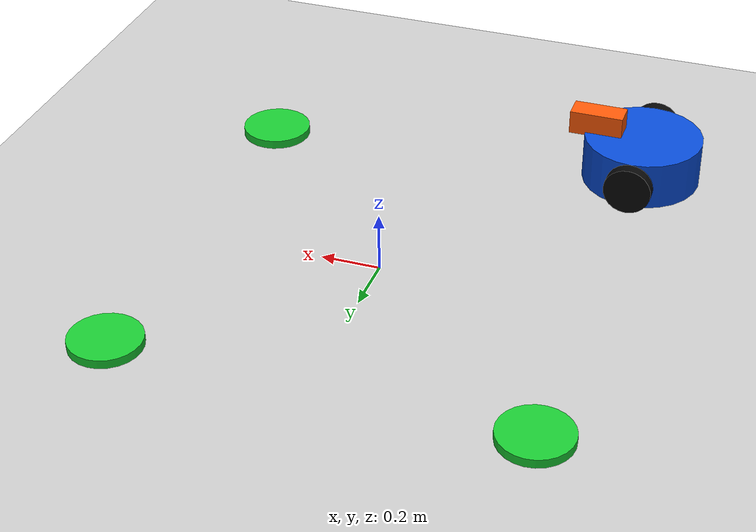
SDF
<?xml version="1.0"?>
<sdf version="1.6">
  <world name="policy_demo">
    <plugin name="gazebo_ros_state" filename="libgazebo_ros_state.so">
      <ros><namespace>/</namespace></ros>
      <update_rate>20.0</update_rate>
    </plugin>
    <gravity>0 0 -9.8</gravity>
    <physics type="ode"><real_time_update_rate>100</real_time_update_rate><max_step_size>0.01</max_step_size></physics>
    <include><uri>model://sun</uri></include>
    <include><uri>model://ground_plane</uri></include>

    <model name="robot">
      <pose>-0.7 -0.7 0.16 0 0 0</pose>
      <link name="base_link">
        <inertial><mass>2.0</mass><inertia><ixx>0.03</ixx><iyy>0.03</iyy><izz>0.05</izz></inertia></inertial>
        <collision name="body_collision"><geometry><cylinder><radius>0.20</radius><length>0.16</length></cylinder></geometry></collision>
        <visual name="body_visual"><geometry><cylinder><radius>0.20</radius><length>0.16</length></cylinder></geometry><material><ambient>0.03 0.30 0.85 1</ambient><diffuse>0.03 0.30 0.85 1</diffuse></material></visual>
        <visual name="direction"><pose>0.16 0 0.11 0 0 0</pose><geometry><box><size>0.18 0.08 0.08</size></box></geometry><material><ambient>1 0.35 0.03 1</ambient><diffuse>1 0.35 0.03 1</diffuse></material></visual>
      </link>
      <link name="left_wheel"><pose>0 0.22 0 1.5708 0 0</pose><inertial><mass>0.15</mass><inertia><ixx>0.001</ixx><iyy>0.001</iyy><izz>0.001</izz></inertia></inertial><collision name="c"><geometry><cylinder><radius>0.08</radius><length>0.04</length></cylinder></geometry></collision><visual name="v"><geometry><cylinder><radius>0.08</radius><length>0.04</length></cylinder></geometry><material><ambient>0.03 0.03 0.03 1</ambient></material></visual></link>
      <link name="right_wheel"><pose>0 -0.22 0 1.5708 0 0</pose><inertial><mass>0.15</mass><inertia><ixx>0.001</ixx><iyy>0.001</iyy><izz>0.001</izz></inertia></inertial><collision name="c"><geometry><cylinder><radius>0.08</radius><length>0.04</length></cylinder></geometry></collision><visual name="v"><geometry><cylinder><radius>0.08</radius><length>0.04</length></cylinder></geometry><material><ambient>0.03 0.03 0.03 1</ambient></material></visual></link>
      <joint name="left_joint" type="revolute"><parent>base_link</parent><child>left_wheel</child><axis><xyz>0 1 0</xyz></axis></joint>
      <joint name="right_joint" type="revolute"><parent>base_link</parent><child>right_wheel</child><axis><xyz>0 1 0</xyz></axis></joint>
      <plugin name="diff_drive" filename="libgazebo_ros_diff_drive.so">
        <ros><namespace>/</namespace></ros><update_rate>50</update_rate><left_joint>left_joint</left_joint><right_joint>right_joint</right_joint><wheel_separation>0.44</wheel_separation><wheel_diameter>0.16</wheel_diameter><max_wheel_torque>10</max_wheel_torque><command_topic>cmd_vel</command_topic><odometry_topic>odom</odometry_topic><odometry_frame>odom</odometry_frame><robot_base_frame>base_link</robot_base_frame><publish_odom>true</publish_odom>
      </plugin>
    </model>

    <model name="camera_rig">
      <static>true</static><pose>0 0 5.8 0 1.5708 0</pose>
      <link name="camera_link"><sensor name="demo_camera" type="camera"><always_on>true</always_on><update_rate>10</update_rate><camera><horizontal_fov>0.95</horizontal_fov><image><width>640</width><height>360</height><format>R8G8B8</format></image><clip><near>0.1</near><far>100</far></clip></camera><plugin name="camera_controller" filename="libgazebo_ros_camera.so"><ros><namespace>/demo_camera</namespace></ros><camera_name>demo_camera</camera_name><frame_name>camera_link</frame_name></plugin></sensor></link>
    </model>

    <model name="target_1"><static>true</static><pose>-0.7 0.65 0.015 0 0 0</pose><link name="l"><visual name="v"><geometry><cylinder><radius>0.12</radius><length>0.03</length></cylinder></geometry><material><ambient>0.1 0.8 0.2 1</ambient><diffuse>0.1 0.8 0.2 1</diffuse></material></visual></link></model>
    <model name="target_2"><static>true</static><pose>0.65 0.65 0.015 0 0 0</pose><link name="l"><visual name="v"><geometry><cylinder><radius>0.12</radius><length>0.03</length></cylinder></geometry><material><ambient>0.1 0.8 0.2 1</ambient><diffuse>0.1 0.8 0.2 1</diffuse></material></visual></link></model>
    <model name="target_3"><static>true</static><pose>0.65 -0.7 0.015 0 0 0</pose><link name="l"><visual name="v"><geometry><cylinder><radius>0.12</radius><length>0.03</length></cylinder></geometry><material><ambient>0.1 0.8 0.2 1</ambient><diffuse>0.1 0.8 0.2 1</diffuse></material></visual></link></model>
  </world>
</sdf>
